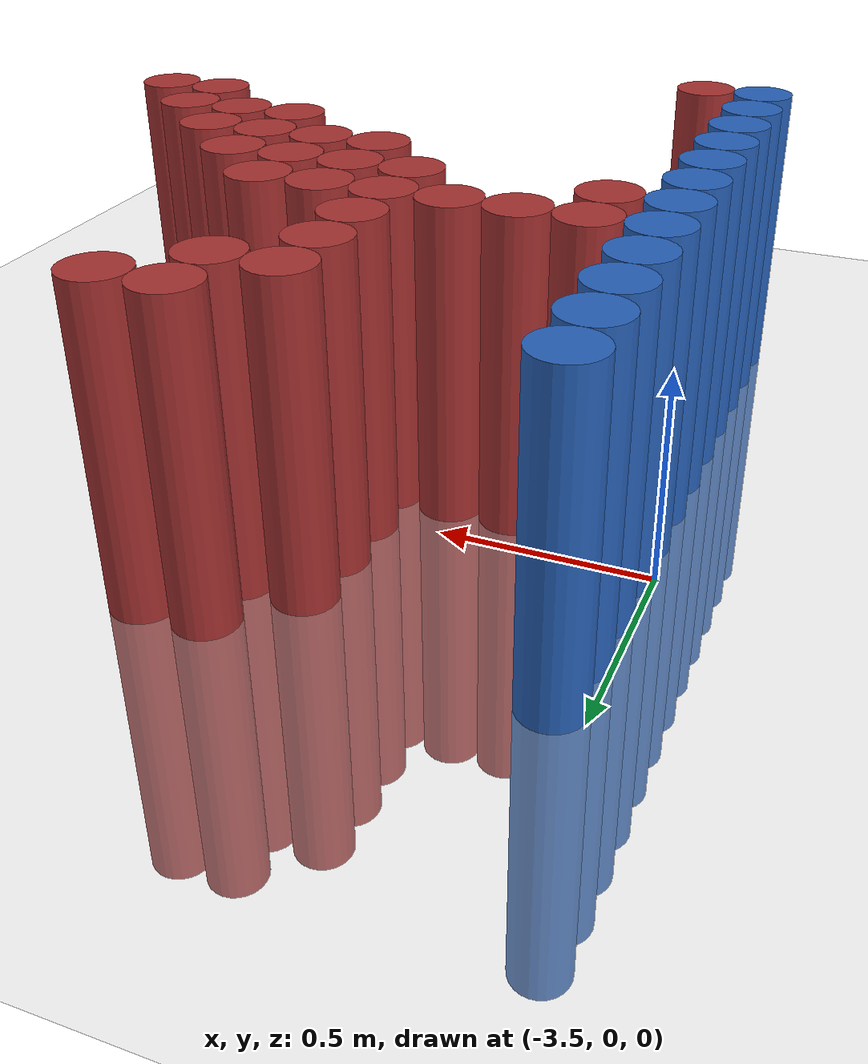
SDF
<sdf version="1.6">
 <world name="default">
  <model name="ground_plane">
   <static>1</static>
   <link name="link">
    <collision name="collision">
     <geometry><plane><normal>0 0 1</normal><size>100 100</size></plane></geometry>
     <surface><friction><ode><mu>100</mu><mu2>50</mu2></ode></friction></surface>
    </collision>
    <visual name="visual">
     <cast_shadows>0</cast_shadows>
     <geometry><plane><normal>0 0 1</normal><size>100 100</size></plane></geometry>
     <material>
      <script><uri>file://media/materials/scripts/gazebo.material</uri><name>Gazebo/Grey</name></script>
     </material>
    </visual>
   </link>
  </model>
  <model name="unit_cylinder_99">
   <static>1</static>
   <pose>-3.425000 -1.175000 0.000000 0.000000 0.000000 0.000000</pose>
   <link name="link">
    <inertial>
     <mass>1</mass>
     <inertia><ixx>0.145833</ixx><ixy>0</ixy><ixz>0</ixz><iyy>0.145833</iyy><iyz>0</iyz><izz>0.125</izz></inertia>
    </inertial>
    <collision name="collision">
     <geometry><cylinder><radius>0.075000</radius><length>1.5</length></cylinder></geometry>
    </collision>
    <visual name="visual">
     <geometry><cylinder><radius>0.075000</radius><length>1.5</length></cylinder></geometry>
     <material>
      <ambient>0.152000 0.379000 0.720000 1</ambient>
      <diffuse>0.152000 0.379000 0.720000 1</diffuse>
     </material>
     <material>
      <script><name>Gazebo/Grey</name><uri>file://media/materials/scripts/gazebo.material</uri></script>
     </material>
    </visual>
   </link>
  </model>
  <model name="unit_cylinder_101">
   <static>1</static>
   <pose>-3.425000 -1.025000 0.000000 0.000000 0.000000 0.000000</pose>
   <link name="link">
    <inertial>
     <mass>1</mass>
     <inertia><ixx>0.145833</ixx><ixy>0</ixy><ixz>0</ixz><iyy>0.145833</iyy><iyz>0</iyz><izz>0.125</izz></inertia>
    </inertial>
    <collision name="collision">
     <geometry><cylinder><radius>0.075000</radius><length>1.5</length></cylinder></geometry>
    </collision>
    <visual name="visual">
     <geometry><cylinder><radius>0.075000</radius><length>1.5</length></cylinder></geometry>
     <material>
      <ambient>0.152000 0.379000 0.720000 1</ambient>
      <diffuse>0.152000 0.379000 0.720000 1</diffuse>
     </material>
     <material>
      <script><name>Gazebo/Grey</name><uri>file://media/materials/scripts/gazebo.material</uri></script>
     </material>
    </visual>
   </link>
  </model>
  <model name="unit_cylinder_103">
   <static>1</static>
   <pose>-3.425000 -0.875000 0.000000 0.000000 0.000000 0.000000</pose>
   <link name="link">
    <inertial>
     <mass>1</mass>
     <inertia><ixx>0.145833</ixx><ixy>0</ixy><ixz>0</ixz><iyy>0.145833</iyy><iyz>0</iyz><izz>0.125</izz></inertia>
    </inertial>
    <collision name="collision">
     <geometry><cylinder><radius>0.075000</radius><length>1.5</length></cylinder></geometry>
    </collision>
    <visual name="visual">
     <geometry><cylinder><radius>0.075000</radius><length>1.5</length></cylinder></geometry>
     <material>
      <ambient>0.152000 0.379000 0.720000 1</ambient>
      <diffuse>0.152000 0.379000 0.720000 1</diffuse>
     </material>
     <material>
      <script><name>Gazebo/Grey</name><uri>file://media/materials/scripts/gazebo.material</uri></script>
     </material>
    </visual>
   </link>
  </model>
  <model name="unit_cylinder_105">
   <static>1</static>
   <pose>-3.425000 -0.725000 0.000000 0.000000 0.000000 0.000000</pose>
   <link name="link">
    <inertial>
     <mass>1</mass>
     <inertia><ixx>0.145833</ixx><ixy>0</ixy><ixz>0</ixz><iyy>0.145833</iyy><iyz>0</iyz><izz>0.125</izz></inertia>
    </inertial>
    <collision name="collision">
     <geometry><cylinder><radius>0.075000</radius><length>1.5</length></cylinder></geometry>
    </collision>
    <visual name="visual">
     <geometry><cylinder><radius>0.075000</radius><length>1.5</length></cylinder></geometry>
     <material>
      <ambient>0.152000 0.379000 0.720000 1</ambient>
      <diffuse>0.152000 0.379000 0.720000 1</diffuse>
     </material>
     <material>
      <script><name>Gazebo/Grey</name><uri>file://media/materials/scripts/gazebo.material</uri></script>
     </material>
    </visual>
   </link>
  </model>
  <model name="unit_cylinder_107">
   <static>1</static>
   <pose>-3.425000 -0.575000 0.000000 0.000000 0.000000 0.000000</pose>
   <link name="link">
    <inertial>
     <mass>1</mass>
     <inertia><ixx>0.145833</ixx><ixy>0</ixy><ixz>0</ixz><iyy>0.145833</iyy><iyz>0</iyz><izz>0.125</izz></inertia>
    </inertial>
    <collision name="collision">
     <geometry><cylinder><radius>0.075000</radius><length>1.5</length></cylinder></geometry>
    </collision>
    <visual name="visual">
     <geometry><cylinder><radius>0.075000</radius><length>1.5</length></cylinder></geometry>
     <material>
      <ambient>0.152000 0.379000 0.720000 1</ambient>
      <diffuse>0.152000 0.379000 0.720000 1</diffuse>
     </material>
     <material>
      <script><name>Gazebo/Grey</name><uri>file://media/materials/scripts/gazebo.material</uri></script>
     </material>
    </visual>
   </link>
  </model>
  <model name="unit_cylinder_109">
   <static>1</static>
   <pose>-3.425000 -0.425000 0.000000 0.000000 0.000000 0.000000</pose>
   <link name="link">
    <inertial>
     <mass>1</mass>
     <inertia><ixx>0.145833</ixx><ixy>0</ixy><ixz>0</ixz><iyy>0.145833</iyy><iyz>0</iyz><izz>0.125</izz></inertia>
    </inertial>
    <collision name="collision">
     <geometry><cylinder><radius>0.075000</radius><length>1.5</length></cylinder></geometry>
    </collision>
    <visual name="visual">
     <geometry><cylinder><radius>0.075000</radius><length>1.5</length></cylinder></geometry>
     <material>
      <ambient>0.152000 0.379000 0.720000 1</ambient>
      <diffuse>0.152000 0.379000 0.720000 1</diffuse>
     </material>
     <material>
      <script><name>Gazebo/Grey</name><uri>file://media/materials/scripts/gazebo.material</uri></script>
     </material>
    </visual>
   </link>
  </model>
  <model name="unit_cylinder_111">
   <static>1</static>
   <pose>-3.425000 -0.275000 0.000000 0.000000 0.000000 0.000000</pose>
   <link name="link">
    <inertial>
     <mass>1</mass>
     <inertia><ixx>0.145833</ixx><ixy>0</ixy><ixz>0</ixz><iyy>0.145833</iyy><iyz>0</iyz><izz>0.125</izz></inertia>
    </inertial>
    <collision name="collision">
     <geometry><cylinder><radius>0.075000</radius><length>1.5</length></cylinder></geometry>
    </collision>
    <visual name="visual">
     <geometry><cylinder><radius>0.075000</radius><length>1.5</length></cylinder></geometry>
     <material>
      <ambient>0.152000 0.379000 0.720000 1</ambient>
      <diffuse>0.152000 0.379000 0.720000 1</diffuse>
     </material>
     <material>
      <script><name>Gazebo/Grey</name><uri>file://media/materials/scripts/gazebo.material</uri></script>
     </material>
    </visual>
   </link>
  </model>
  <model name="unit_cylinder_113">
   <static>1</static>
   <pose>-3.425000 -0.125000 0.000000 0.000000 0.000000 0.000000</pose>
   <link name="link">
    <inertial>
     <mass>1</mass>
     <inertia><ixx>0.145833</ixx><ixy>0</ixy><ixz>0</ixz><iyy>0.145833</iyy><iyz>0</iyz><izz>0.125</izz></inertia>
    </inertial>
    <collision name="collision">
     <geometry><cylinder><radius>0.075000</radius><length>1.5</length></cylinder></geometry>
    </collision>
    <visual name="visual">
     <geometry><cylinder><radius>0.075000</radius><length>1.5</length></cylinder></geometry>
     <material>
      <ambient>0.152000 0.379000 0.720000 1</ambient>
      <diffuse>0.152000 0.379000 0.720000 1</diffuse>
     </material>
     <material>
      <script><name>Gazebo/Grey</name><uri>file://media/materials/scripts/gazebo.material</uri></script>
     </material>
    </visual>
   </link>
  </model>
  <model name="unit_cylinder_115">
   <static>1</static>
   <pose>-3.425000 0.025000 0.000000 0.000000 0.000000 0.000000</pose>
   <link name="link">
    <inertial>
     <mass>1</mass>
     <inertia><ixx>0.145833</ixx><ixy>0</ixy><ixz>0</ixz><iyy>0.145833</iyy><iyz>0</iyz><izz>0.125</izz></inertia>
    </inertial>
    <collision name="collision">
     <geometry><cylinder><radius>0.075000</radius><length>1.5</length></cylinder></geometry>
    </collision>
    <visual name="visual">
     <geometry><cylinder><radius>0.075000</radius><length>1.5</length></cylinder></geometry>
     <material>
      <ambient>0.152000 0.379000 0.720000 1</ambient>
      <diffuse>0.152000 0.379000 0.720000 1</diffuse>
     </material>
     <material>
      <script><name>Gazebo/Grey</name><uri>file://media/materials/scripts/gazebo.material</uri></script>
     </material>
    </visual>
   </link>
  </model>
  <model name="unit_cylinder_117">
   <static>1</static>
   <pose>-3.425000 0.175000 0.000000 0.000000 0.000000 0.000000</pose>
   <link name="link">
    <inertial>
     <mass>1</mass>
     <inertia><ixx>0.145833</ixx><ixy>0</ixy><ixz>0</ixz><iyy>0.145833</iyy><iyz>0</iyz><izz>0.125</izz></inertia>
    </inertial>
    <collision name="collision">
     <geometry><cylinder><radius>0.075000</radius><length>1.5</length></cylinder></geometry>
    </collision>
    <visual name="visual">
     <geometry><cylinder><radius>0.075000</radius><length>1.5</length></cylinder></geometry>
     <material>
      <ambient>0.152000 0.379000 0.720000 1</ambient>
      <diffuse>0.152000 0.379000 0.720000 1</diffuse>
     </material>
     <material>
      <script><name>Gazebo/Grey</name><uri>file://media/materials/scripts/gazebo.material</uri></script>
     </material>
    </visual>
   </link>
  </model>
  <model name="unit_cylinder_119">
   <static>1</static>
   <pose>-3.425000 0.325000 0.000000 0.000000 0.000000 0.000000</pose>
   <link name="link">
    <inertial>
     <mass>1</mass>
     <inertia><ixx>0.145833</ixx><ixy>0</ixy><ixz>0</ixz><iyy>0.145833</iyy><iyz>0</iyz><izz>0.125</izz></inertia>
    </inertial>
    <collision name="collision">
     <geometry><cylinder><radius>0.075000</radius><length>1.5</length></cylinder></geometry>
    </collision>
    <visual name="visual">
     <geometry><cylinder><radius>0.075000</radius><length>1.5</length></cylinder></geometry>
     <material>
      <ambient>0.152000 0.379000 0.720000 1</ambient>
      <diffuse>0.152000 0.379000 0.720000 1</diffuse>
     </material>
     <material>
      <script><name>Gazebo/Grey</name><uri>file://media/materials/scripts/gazebo.material</uri></script>
     </material>
    </visual>
   </link>
  </model>
  <model name="unit_cylinder_121">
   <static>1</static>
   <pose>-3.425000 0.475000 0.000000 0.000000 0.000000 0.000000</pose>
   <link name="link">
    <inertial>
     <mass>1</mass>
     <inertia><ixx>0.145833</ixx><ixy>0</ixy><ixz>0</ixz><iyy>0.145833</iyy><iyz>0</iyz><izz>0.125</izz></inertia>
    </inertial>
    <collision name="collision">
     <geometry><cylinder><radius>0.075000</radius><length>1.5</length></cylinder></geometry>
    </collision>
    <visual name="visual">
     <geometry><cylinder><radius>0.075000</radius><length>1.5</length></cylinder></geometry>
     <material>
      <ambient>0.152000 0.379000 0.720000 1</ambient>
      <diffuse>0.152000 0.379000 0.720000 1</diffuse>
     </material>
     <material>
      <script><name>Gazebo/Grey</name><uri>file://media/materials/scripts/gazebo.material</uri></script>
     </material>
    </visual>
   </link>
  </model>
  <model name="unit_cylinder_213">
   <static>1</static>
   <pose>-3.425000 -1.175000 0.000000 0.000000 0.000000 0.000000</pose>
   <link name="link">
    <inertial>
     <mass>1</mass>
     <inertia><ixx>0.145833</ixx><ixy>0</ixy><ixz>0</ixz><iyy>0.145833</iyy><iyz>0</iyz><izz>0.125</izz></inertia>
    </inertial>
    <collision name="collision">
     <geometry><cylinder><radius>0.075000</radius><length>1.5</length></cylinder></geometry>
    </collision>
    <visual name="visual">
     <geometry><cylinder><radius>0.075000</radius><length>1.5</length></cylinder></geometry>
     <material>
      <ambient>0.152000 0.379000 0.720000 1</ambient>
      <diffuse>0.152000 0.379000 0.720000 1</diffuse>
     </material>
     <material>
      <script><name>Gazebo/Grey</name><uri>file://media/materials/scripts/gazebo.material</uri></script>
     </material>
    </visual>
   </link>
  </model>
  <model name="unit_cylinder_214">
   <static>1</static>
   <pose>-3.425000 -1.025000 0.000000 0.000000 0.000000 0.000000</pose>
   <link name="link">
    <inertial>
     <mass>1</mass>
     <inertia><ixx>0.145833</ixx><ixy>0</ixy><ixz>0</ixz><iyy>0.145833</iyy><iyz>0</iyz><izz>0.125</izz></inertia>
    </inertial>
    <collision name="collision">
     <geometry><cylinder><radius>0.075000</radius><length>1.5</length></cylinder></geometry>
    </collision>
    <visual name="visual">
     <geometry><cylinder><radius>0.075000</radius><length>1.5</length></cylinder></geometry>
     <material>
      <ambient>0.152000 0.379000 0.720000 1</ambient>
      <diffuse>0.152000 0.379000 0.720000 1</diffuse>
     </material>
     <material>
      <script><name>Gazebo/Grey</name><uri>file://media/materials/scripts/gazebo.material</uri></script>
     </material>
    </visual>
   </link>
  </model>
  <model name="unit_cylinder_215">
   <static>1</static>
   <pose>-3.425000 -0.875000 0.000000 0.000000 0.000000 0.000000</pose>
   <link name="link">
    <inertial>
     <mass>1</mass>
     <inertia><ixx>0.145833</ixx><ixy>0</ixy><ixz>0</ixz><iyy>0.145833</iyy><iyz>0</iyz><izz>0.125</izz></inertia>
    </inertial>
    <collision name="collision">
     <geometry><cylinder><radius>0.075000</radius><length>1.5</length></cylinder></geometry>
    </collision>
    <visual name="visual">
     <geometry><cylinder><radius>0.075000</radius><length>1.5</length></cylinder></geometry>
     <material>
      <ambient>0.152000 0.379000 0.720000 1</ambient>
      <diffuse>0.152000 0.379000 0.720000 1</diffuse>
     </material>
     <material>
      <script><name>Gazebo/Grey</name><uri>file://media/materials/scripts/gazebo.material</uri></script>
     </material>
    </visual>
   </link>
  </model>
  <model name="unit_cylinder_216">
   <static>1</static>
   <pose>-3.425000 -0.725000 0.000000 0.000000 0.000000 0.000000</pose>
   <link name="link">
    <inertial>
     <mass>1</mass>
     <inertia><ixx>0.145833</ixx><ixy>0</ixy><ixz>0</ixz><iyy>0.145833</iyy><iyz>0</iyz><izz>0.125</izz></inertia>
    </inertial>
    <collision name="collision">
     <geometry><cylinder><radius>0.075000</radius><length>1.5</length></cylinder></geometry>
    </collision>
    <visual name="visual">
     <geometry><cylinder><radius>0.075000</radius><length>1.5</length></cylinder></geometry>
     <material>
      <ambient>0.152000 0.379000 0.720000 1</ambient>
      <diffuse>0.152000 0.379000 0.720000 1</diffuse>
     </material>
     <material>
      <script><name>Gazebo/Grey</name><uri>file://media/materials/scripts/gazebo.material</uri></script>
     </material>
    </visual>
   </link>
  </model>
  <model name="unit_cylinder_217">
   <static>1</static>
   <pose>-3.425000 -0.575000 0.000000 0.000000 0.000000 0.000000</pose>
   <link name="link">
    <inertial>
     <mass>1</mass>
     <inertia><ixx>0.145833</ixx><ixy>0</ixy><ixz>0</ixz><iyy>0.145833</iyy><iyz>0</iyz><izz>0.125</izz></inertia>
    </inertial>
    <collision name="collision">
     <geometry><cylinder><radius>0.075000</radius><length>1.5</length></cylinder></geometry>
    </collision>
    <visual name="visual">
     <geometry><cylinder><radius>0.075000</radius><length>1.5</length></cylinder></geometry>
     <material>
      <ambient>0.152000 0.379000 0.720000 1</ambient>
      <diffuse>0.152000 0.379000 0.720000 1</diffuse>
     </material>
     <material>
      <script><name>Gazebo/Grey</name><uri>file://media/materials/scripts/gazebo.material</uri></script>
     </material>
    </visual>
   </link>
  </model>
  <model name="unit_cylinder_218">
   <static>1</static>
   <pose>-3.425000 -0.425000 0.000000 0.000000 0.000000 0.000000</pose>
   <link name="link">
    <inertial>
     <mass>1</mass>
     <inertia><ixx>0.145833</ixx><ixy>0</ixy><ixz>0</ixz><iyy>0.145833</iyy><iyz>0</iyz><izz>0.125</izz></inertia>
    </inertial>
    <collision name="collision">
     <geometry><cylinder><radius>0.075000</radius><length>1.5</length></cylinder></geometry>
    </collision>
    <visual name="visual">
     <geometry><cylinder><radius>0.075000</radius><length>1.5</length></cylinder></geometry>
     <material>
      <ambient>0.152000 0.379000 0.720000 1</ambient>
      <diffuse>0.152000 0.379000 0.720000 1</diffuse>
     </material>
     <material>
      <script><name>Gazebo/Grey</name><uri>file://media/materials/scripts/gazebo.material</uri></script>
     </material>
    </visual>
   </link>
  </model>
  <model name="unit_cylinder_219">
   <static>1</static>
   <pose>-3.425000 -0.275000 0.000000 0.000000 0.000000 0.000000</pose>
   <link name="link">
    <inertial>
     <mass>1</mass>
     <inertia><ixx>0.145833</ixx><ixy>0</ixy><ixz>0</ixz><iyy>0.145833</iyy><iyz>0</iyz><izz>0.125</izz></inertia>
    </inertial>
    <collision name="collision">
     <geometry><cylinder><radius>0.075000</radius><length>1.5</length></cylinder></geometry>
    </collision>
    <visual name="visual">
     <geometry><cylinder><radius>0.075000</radius><length>1.5</length></cylinder></geometry>
     <material>
      <ambient>0.152000 0.379000 0.720000 1</ambient>
      <diffuse>0.152000 0.379000 0.720000 1</diffuse>
     </material>
     <material>
      <script><name>Gazebo/Grey</name><uri>file://media/materials/scripts/gazebo.material</uri></script>
     </material>
    </visual>
   </link>
  </model>
  <model name="unit_cylinder_220">
   <static>1</static>
   <pose>-3.425000 -0.125000 0.000000 0.000000 0.000000 0.000000</pose>
   <link name="link">
    <inertial>
     <mass>1</mass>
     <inertia><ixx>0.145833</ixx><ixy>0</ixy><ixz>0</ixz><iyy>0.145833</iyy><iyz>0</iyz><izz>0.125</izz></inertia>
    </inertial>
    <collision name="collision">
     <geometry><cylinder><radius>0.075000</radius><length>1.5</length></cylinder></geometry>
    </collision>
    <visual name="visual">
     <geometry><cylinder><radius>0.075000</radius><length>1.5</length></cylinder></geometry>
     <material>
      <ambient>0.152000 0.379000 0.720000 1</ambient>
      <diffuse>0.152000 0.379000 0.720000 1</diffuse>
     </material>
     <material>
      <script><name>Gazebo/Grey</name><uri>file://media/materials/scripts/gazebo.material</uri></script>
     </material>
    </visual>
   </link>
  </model>
  <model name="unit_cylinder_221">
   <static>1</static>
   <pose>-3.425000 0.025000 0.000000 0.000000 0.000000 0.000000</pose>
   <link name="link">
    <inertial>
     <mass>1</mass>
     <inertia><ixx>0.145833</ixx><ixy>0</ixy><ixz>0</ixz><iyy>0.145833</iyy><iyz>0</iyz><izz>0.125</izz></inertia>
    </inertial>
    <collision name="collision">
     <geometry><cylinder><radius>0.075000</radius><length>1.5</length></cylinder></geometry>
    </collision>
    <visual name="visual">
     <geometry><cylinder><radius>0.075000</radius><length>1.5</length></cylinder></geometry>
     <material>
      <ambient>0.152000 0.379000 0.720000 1</ambient>
      <diffuse>0.152000 0.379000 0.720000 1</diffuse>
     </material>
     <material>
      <script><name>Gazebo/Grey</name><uri>file://media/materials/scripts/gazebo.material</uri></script>
     </material>
    </visual>
   </link>
  </model>
  <model name="unit_cylinder_222">
   <static>1</static>
   <pose>-3.425000 0.175000 0.000000 0.000000 0.000000 0.000000</pose>
   <link name="link">
    <inertial>
     <mass>1</mass>
     <inertia><ixx>0.145833</ixx><ixy>0</ixy><ixz>0</ixz><iyy>0.145833</iyy><iyz>0</iyz><izz>0.125</izz></inertia>
    </inertial>
    <collision name="collision">
     <geometry><cylinder><radius>0.075000</radius><length>1.5</length></cylinder></geometry>
    </collision>
    <visual name="visual">
     <geometry><cylinder><radius>0.075000</radius><length>1.5</length></cylinder></geometry>
     <material>
      <ambient>0.152000 0.379000 0.720000 1</ambient>
      <diffuse>0.152000 0.379000 0.720000 1</diffuse>
     </material>
     <material>
      <script><name>Gazebo/Grey</name><uri>file://media/materials/scripts/gazebo.material</uri></script>
     </material>
    </visual>
   </link>
  </model>
  <model name="unit_cylinder_223">
   <static>1</static>
   <pose>-3.425000 0.325000 0.000000 0.000000 0.000000 0.000000</pose>
   <link name="link">
    <inertial>
     <mass>1</mass>
     <inertia><ixx>0.145833</ixx><ixy>0</ixy><ixz>0</ixz><iyy>0.145833</iyy><iyz>0</iyz><izz>0.125</izz></inertia>
    </inertial>
    <collision name="collision">
     <geometry><cylinder><radius>0.075000</radius><length>1.5</length></cylinder></geometry>
    </collision>
    <visual name="visual">
     <geometry><cylinder><radius>0.075000</radius><length>1.5</length></cylinder></geometry>
     <material>
      <ambient>0.152000 0.379000 0.720000 1</ambient>
      <diffuse>0.152000 0.379000 0.720000 1</diffuse>
     </material>
     <material>
      <script><name>Gazebo/Grey</name><uri>file://media/materials/scripts/gazebo.material</uri></script>
     </material>
    </visual>
   </link>
  </model>
  <model name="unit_cylinder_224">
   <static>1</static>
   <pose>-3.425000 0.475000 0.000000 0.000000 0.000000 0.000000</pose>
   <link name="link">
    <inertial>
     <mass>1</mass>
     <inertia><ixx>0.145833</ixx><ixy>0</ixy><ixz>0</ixz><iyy>0.145833</iyy><iyz>0</iyz><izz>0.125</izz></inertia>
    </inertial>
    <collision name="collision">
     <geometry><cylinder><radius>0.075000</radius><length>1.5</length></cylinder></geometry>
    </collision>
    <visual name="visual">
     <geometry><cylinder><radius>0.075000</radius><length>1.5</length></cylinder></geometry>
     <material>
      <ambient>0.152000 0.379000 0.720000 1</ambient>
      <diffuse>0.152000 0.379000 0.720000 1</diffuse>
     </material>
     <material>
      <script><name>Gazebo/Grey</name><uri>file://media/materials/scripts/gazebo.material</uri></script>
     </material>
    </visual>
   </link>
  </model>
  <model name="unit_cylinder_263">
   <static>1</static>
   <pose>-3.275000 -1.175000 0.000000 0.000000 0.000000 0.000000</pose>
   <link name="link">
    <inertial>
     <mass>1</mass>
     <inertia><ixx>0.145833</ixx><ixy>0</ixy><ixz>0</ixz><iyy>0.145833</iyy><iyz>0</iyz><izz>0.125</izz></inertia>
    </inertial>
    <collision name="collision">
     <geometry><cylinder><radius>0.075000</radius><length>1.5</length></cylinder></geometry>
    </collision>
    <visual name="visual">
     <geometry><cylinder><radius>0.075000</radius><length>1.5</length></cylinder></geometry>
     <material>
      <ambient>0.648000 0.192000 0.192000 1</ambient>
      <diffuse>0.648000 0.192000 0.192000 1</diffuse>
     </material>
     <material>
      <script><name>Gazebo/Grey</name><uri>file://media/materials/scripts/gazebo.material</uri></script>
     </material>
    </visual>
   </link>
  </model>
  <model name="unit_cylinder_264">
   <static>1</static>
   <pose>-3.275000 -0.275000 0.000000 0.000000 0.000000 0.000000</pose>
   <link name="link">
    <inertial>
     <mass>1</mass>
     <inertia><ixx>0.145833</ixx><ixy>0</ixy><ixz>0</ixz><iyy>0.145833</iyy><iyz>0</iyz><izz>0.125</izz></inertia>
    </inertial>
    <collision name="collision">
     <geometry><cylinder><radius>0.075000</radius><length>1.5</length></cylinder></geometry>
    </collision>
    <visual name="visual">
     <geometry><cylinder><radius>0.075000</radius><length>1.5</length></cylinder></geometry>
     <material>
      <ambient>0.648000 0.192000 0.192000 1</ambient>
      <diffuse>0.648000 0.192000 0.192000 1</diffuse>
     </material>
     <material>
      <script><name>Gazebo/Grey</name><uri>file://media/materials/scripts/gazebo.material</uri></script>
     </material>
    </visual>
   </link>
  </model>
  <model name="unit_cylinder_265">
   <static>1</static>
   <pose>-3.275000 -0.125000 0.000000 0.000000 0.000000 0.000000</pose>
   <link name="link">
    <inertial>
     <mass>1</mass>
     <inertia><ixx>0.145833</ixx><ixy>0</ixy><ixz>0</ixz><iyy>0.145833</iyy><iyz>0</iyz><izz>0.125</izz></inertia>
    </inertial>
    <collision name="collision">
     <geometry><cylinder><radius>0.075000</radius><length>1.5</length></cylinder></geometry>
    </collision>
    <visual name="visual">
     <geometry><cylinder><radius>0.075000</radius><length>1.5</length></cylinder></geometry>
     <material>
      <ambient>0.648000 0.192000 0.192000 1</ambient>
      <diffuse>0.648000 0.192000 0.192000 1</diffuse>
     </material>
     <material>
      <script><name>Gazebo/Grey</name><uri>file://media/materials/scripts/gazebo.material</uri></script>
     </material>
    </visual>
   </link>
  </model>
  <model name="unit_cylinder_284">
   <static>1</static>
   <pose>-3.125000 -0.125000 0.000000 0.000000 0.000000 0.000000</pose>
   <link name="link">
    <inertial>
     <mass>1</mass>
     <inertia><ixx>0.145833</ixx><ixy>0</ixy><ixz>0</ixz><iyy>0.145833</iyy><iyz>0</iyz><izz>0.125</izz></inertia>
    </inertial>
    <collision name="collision">
     <geometry><cylinder><radius>0.075000</radius><length>1.5</length></cylinder></geometry>
    </collision>
    <visual name="visual">
     <geometry><cylinder><radius>0.075000</radius><length>1.5</length></cylinder></geometry>
     <material>
      <ambient>0.648000 0.192000 0.192000 1</ambient>
      <diffuse>0.648000 0.192000 0.192000 1</diffuse>
     </material>
     <material>
      <script><name>Gazebo/Grey</name><uri>file://media/materials/scripts/gazebo.material</uri></script>
     </material>
    </visual>
   </link>
  </model>
  <model name="unit_cylinder_290">
   <static>1</static>
   <pose>-2.975000 -0.125000 0.000000 0.000000 0.000000 0.000000</pose>
   <link name="link">
    <inertial>
     <mass>1</mass>
     <inertia><ixx>0.145833</ixx><ixy>0</ixy><ixz>0</ixz><iyy>0.145833</iyy><iyz>0</iyz><izz>0.125</izz></inertia>
    </inertial>
    <collision name="collision">
     <geometry><cylinder><radius>0.075000</radius><length>1.5</length></cylinder></geometry>
    </collision>
    <visual name="visual">
     <geometry><cylinder><radius>0.075000</radius><length>1.5</length></cylinder></geometry>
     <material>
      <ambient>0.648000 0.192000 0.192000 1</ambient>
      <diffuse>0.648000 0.192000 0.192000 1</diffuse>
     </material>
     <material>
      <script><name>Gazebo/Grey</name><uri>file://media/materials/scripts/gazebo.material</uri></script>
     </material>
    </visual>
   </link>
  </model>
  <model name="unit_cylinder_294">
   <static>1</static>
   <pose>-2.825000 -0.275000 0.000000 0.000000 0.000000 0.000000</pose>
   <link name="link">
    <inertial>
     <mass>1</mass>
     <inertia><ixx>0.145833</ixx><ixy>0</ixy><ixz>0</ixz><iyy>0.145833</iyy><iyz>0</iyz><izz>0.125</izz></inertia>
    </inertial>
    <collision name="collision">
     <geometry><cylinder><radius>0.075000</radius><length>1.5</length></cylinder></geometry>
    </collision>
    <visual name="visual">
     <geometry><cylinder><radius>0.075000</radius><length>1.5</length></cylinder></geometry>
     <material>
      <ambient>0.648000 0.192000 0.192000 1</ambient>
      <diffuse>0.648000 0.192000 0.192000 1</diffuse>
     </material>
     <material>
      <script><name>Gazebo/Grey</name><uri>file://media/materials/scripts/gazebo.material</uri></script>
     </material>
    </visual>
   </link>
  </model>
  <model name="unit_cylinder_295">
   <static>1</static>
   <pose>-2.825000 -0.125000 0.000000 0.000000 0.000000 0.000000</pose>
   <link name="link">
    <inertial>
     <mass>1</mass>
     <inertia><ixx>0.145833</ixx><ixy>0</ixy><ixz>0</ixz><iyy>0.145833</iyy><iyz>0</iyz><izz>0.125</izz></inertia>
    </inertial>
    <collision name="collision">
     <geometry><cylinder><radius>0.075000</radius><length>1.5</length></cylinder></geometry>
    </collision>
    <visual name="visual">
     <geometry><cylinder><radius>0.075000</radius><length>1.5</length></cylinder></geometry>
     <material>
      <ambient>0.648000 0.192000 0.192000 1</ambient>
      <diffuse>0.648000 0.192000 0.192000 1</diffuse>
     </material>
     <material>
      <script><name>Gazebo/Grey</name><uri>file://media/materials/scripts/gazebo.material</uri></script>
     </material>
    </visual>
   </link>
  </model>
  <model name="unit_cylinder_296">
   <static>1</static>
   <pose>-2.825000 0.025000 0.000000 0.000000 0.000000 0.000000</pose>
   <link name="link">
    <inertial>
     <mass>1</mass>
     <inertia><ixx>0.145833</ixx><ixy>0</ixy><ixz>0</ixz><iyy>0.145833</iyy><iyz>0</iyz><izz>0.125</izz></inertia>
    </inertial>
    <collision name="collision">
     <geometry><cylinder><radius>0.075000</radius><length>1.5</length></cylinder></geometry>
    </collision>
    <visual name="visual">
     <geometry><cylinder><radius>0.075000</radius><length>1.5</length></cylinder></geometry>
     <material>
      <ambient>0.648000 0.192000 0.192000 1</ambient>
      <diffuse>0.648000 0.192000 0.192000 1</diffuse>
     </material>
     <material>
      <script><name>Gazebo/Grey</name><uri>file://media/materials/scripts/gazebo.material</uri></script>
     </material>
    </visual>
   </link>
  </model>
  <model name="unit_cylinder_297">
   <static>1</static>
   <pose>-2.825000 0.175000 0.000000 0.000000 0.000000 0.000000</pose>
   <link name="link">
    <inertial>
     <mass>1</mass>
     <inertia><ixx>0.145833</ixx><ixy>0</ixy><ixz>0</ixz><iyy>0.145833</iyy><iyz>0</iyz><izz>0.125</izz></inertia>
    </inertial>
    <collision name="collision">
     <geometry><cylinder><radius>0.075000</radius><length>1.5</length></cylinder></geometry>
    </collision>
    <visual name="visual">
     <geometry><cylinder><radius>0.075000</radius><length>1.5</length></cylinder></geometry>
     <material>
      <ambient>0.648000 0.192000 0.192000 1</ambient>
      <diffuse>0.648000 0.192000 0.192000 1</diffuse>
     </material>
     <material>
      <script><name>Gazebo/Grey</name><uri>file://media/materials/scripts/gazebo.material</uri></script>
     </material>
    </visual>
   </link>
  </model>
  <model name="unit_cylinder_298">
   <static>1</static>
   <pose>-2.825000 0.325000 0.000000 0.000000 0.000000 0.000000</pose>
   <link name="link">
    <inertial>
     <mass>1</mass>
     <inertia><ixx>0.145833</ixx><ixy>0</ixy><ixz>0</ixz><iyy>0.145833</iyy><iyz>0</iyz><izz>0.125</izz></inertia>
    </inertial>
    <collision name="collision">
     <geometry><cylinder><radius>0.075000</radius><length>1.5</length></cylinder></geometry>
    </collision>
    <visual name="visual">
     <geometry><cylinder><radius>0.075000</radius><length>1.5</length></cylinder></geometry>
     <material>
      <ambient>0.648000 0.192000 0.192000 1</ambient>
      <diffuse>0.648000 0.192000 0.192000 1</diffuse>
     </material>
     <material>
      <script><name>Gazebo/Grey</name><uri>file://media/materials/scripts/gazebo.material</uri></script>
     </material>
    </visual>
   </link>
  </model>
  <model name="unit_cylinder_305">
   <static>1</static>
   <pose>-2.675000 -0.425000 0.000000 0.000000 0.000000 0.000000</pose>
   <link name="link">
    <inertial>
     <mass>1</mass>
     <inertia><ixx>0.145833</ixx><ixy>0</ixy><ixz>0</ixz><iyy>0.145833</iyy><iyz>0</iyz><izz>0.125</izz></inertia>
    </inertial>
    <collision name="collision">
     <geometry><cylinder><radius>0.075000</radius><length>1.5</length></cylinder></geometry>
    </collision>
    <visual name="visual">
     <geometry><cylinder><radius>0.075000</radius><length>1.5</length></cylinder></geometry>
     <material>
      <ambient>0.648000 0.192000 0.192000 1</ambient>
      <diffuse>0.648000 0.192000 0.192000 1</diffuse>
     </material>
     <material>
      <script><name>Gazebo/Grey</name><uri>file://media/materials/scripts/gazebo.material</uri></script>
     </material>
    </visual>
   </link>
  </model>
  <model name="unit_cylinder_306">
   <static>1</static>
   <pose>-2.675000 -0.275000 0.000000 0.000000 0.000000 0.000000</pose>
   <link name="link">
    <inertial>
     <mass>1</mass>
     <inertia><ixx>0.145833</ixx><ixy>0</ixy><ixz>0</ixz><iyy>0.145833</iyy><iyz>0</iyz><izz>0.125</izz></inertia>
    </inertial>
    <collision name="collision">
     <geometry><cylinder><radius>0.075000</radius><length>1.5</length></cylinder></geometry>
    </collision>
    <visual name="visual">
     <geometry><cylinder><radius>0.075000</radius><length>1.5</length></cylinder></geometry>
     <material>
      <ambient>0.648000 0.192000 0.192000 1</ambient>
      <diffuse>0.648000 0.192000 0.192000 1</diffuse>
     </material>
     <material>
      <script><name>Gazebo/Grey</name><uri>file://media/materials/scripts/gazebo.material</uri></script>
     </material>
    </visual>
   </link>
  </model>
  <model name="unit_cylinder_307">
   <static>1</static>
   <pose>-2.675000 -0.125000 0.000000 0.000000 0.000000 0.000000</pose>
   <link name="link">
    <inertial>
     <mass>1</mass>
     <inertia><ixx>0.145833</ixx><ixy>0</ixy><ixz>0</ixz><iyy>0.145833</iyy><iyz>0</iyz><izz>0.125</izz></inertia>
    </inertial>
    <collision name="collision">
     <geometry><cylinder><radius>0.075000</radius><length>1.5</length></cylinder></geometry>
    </collision>
    <visual name="visual">
     <geometry><cylinder><radius>0.075000</radius><length>1.5</length></cylinder></geometry>
     <material>
      <ambient>0.648000 0.192000 0.192000 1</ambient>
      <diffuse>0.648000 0.192000 0.192000 1</diffuse>
     </material>
     <material>
      <script><name>Gazebo/Grey</name><uri>file://media/materials/scripts/gazebo.material</uri></script>
     </material>
    </visual>
   </link>
  </model>
  <model name="unit_cylinder_308">
   <static>1</static>
   <pose>-2.675000 0.325000 0.000000 0.000000 0.000000 0.000000</pose>
   <link name="link">
    <inertial>
     <mass>1</mass>
     <inertia><ixx>0.145833</ixx><ixy>0</ixy><ixz>0</ixz><iyy>0.145833</iyy><iyz>0</iyz><izz>0.125</izz></inertia>
    </inertial>
    <collision name="collision">
     <geometry><cylinder><radius>0.075000</radius><length>1.5</length></cylinder></geometry>
    </collision>
    <visual name="visual">
     <geometry><cylinder><radius>0.075000</radius><length>1.5</length></cylinder></geometry>
     <material>
      <ambient>0.648000 0.192000 0.192000 1</ambient>
      <diffuse>0.648000 0.192000 0.192000 1</diffuse>
     </material>
     <material>
      <script><name>Gazebo/Grey</name><uri>file://media/materials/scripts/gazebo.material</uri></script>
     </material>
    </visual>
   </link>
  </model>
  <model name="unit_cylinder_309">
   <static>1</static>
   <pose>-2.675000 0.475000 0.000000 0.000000 0.000000 0.000000</pose>
   <link name="link">
    <inertial>
     <mass>1</mass>
     <inertia><ixx>0.145833</ixx><ixy>0</ixy><ixz>0</ixz><iyy>0.145833</iyy><iyz>0</iyz><izz>0.125</izz></inertia>
    </inertial>
    <collision name="collision">
     <geometry><cylinder><radius>0.075000</radius><length>1.5</length></cylinder></geometry>
    </collision>
    <visual name="visual">
     <geometry><cylinder><radius>0.075000</radius><length>1.5</length></cylinder></geometry>
     <material>
      <ambient>0.648000 0.192000 0.192000 1</ambient>
      <diffuse>0.648000 0.192000 0.192000 1</diffuse>
     </material>
     <material>
      <script><name>Gazebo/Grey</name><uri>file://media/materials/scripts/gazebo.material</uri></script>
     </material>
    </visual>
   </link>
  </model>
  <model name="unit_cylinder_315">
   <static>1</static>
   <pose>-2.525000 -0.425000 0.000000 0.000000 0.000000 0.000000</pose>
   <link name="link">
    <inertial>
     <mass>1</mass>
     <inertia><ixx>0.145833</ixx><ixy>0</ixy><ixz>0</ixz><iyy>0.145833</iyy><iyz>0</iyz><izz>0.125</izz></inertia>
    </inertial>
    <collision name="collision">
     <geometry><cylinder><radius>0.075000</radius><length>1.5</length></cylinder></geometry>
    </collision>
    <visual name="visual">
     <geometry><cylinder><radius>0.075000</radius><length>1.5</length></cylinder></geometry>
     <material>
      <ambient>0.648000 0.192000 0.192000 1</ambient>
      <diffuse>0.648000 0.192000 0.192000 1</diffuse>
     </material>
     <material>
      <script><name>Gazebo/Grey</name><uri>file://media/materials/scripts/gazebo.material</uri></script>
     </material>
    </visual>
   </link>
  </model>
  <model name="unit_cylinder_316">
   <static>1</static>
   <pose>-2.525000 -0.275000 0.000000 0.000000 0.000000 0.000000</pose>
   <link name="link">
    <inertial>
     <mass>1</mass>
     <inertia><ixx>0.145833</ixx><ixy>0</ixy><ixz>0</ixz><iyy>0.145833</iyy><iyz>0</iyz><izz>0.125</izz></inertia>
    </inertial>
    <collision name="collision">
     <geometry><cylinder><radius>0.075000</radius><length>1.5</length></cylinder></geometry>
    </collision>
    <visual name="visual">
     <geometry><cylinder><radius>0.075000</radius><length>1.5</length></cylinder></geometry>
     <material>
      <ambient>0.648000 0.192000 0.192000 1</ambient>
      <diffuse>0.648000 0.192000 0.192000 1</diffuse>
     </material>
     <material>
      <script><name>Gazebo/Grey</name><uri>file://media/materials/scripts/gazebo.material</uri></script>
     </material>
    </visual>
   </link>
  </model>
  <model name="unit_cylinder_317">
   <static>1</static>
   <pose>-2.525000 -0.125000 0.000000 0.000000 0.000000 0.000000</pose>
   <link name="link">
    <inertial>
     <mass>1</mass>
     <inertia><ixx>0.145833</ixx><ixy>0</ixy><ixz>0</ixz><iyy>0.145833</iyy><iyz>0</iyz><izz>0.125</izz></inertia>
    </inertial>
    <collision name="collision">
     <geometry><cylinder><radius>0.075000</radius><length>1.5</length></cylinder></geometry>
    </collision>
    <visual name="visual">
     <geometry><cylinder><radius>0.075000</radius><length>1.5</length></cylinder></geometry>
     <material>
      <ambient>0.648000 0.192000 0.192000 1</ambient>
      <diffuse>0.648000 0.192000 0.192000 1</diffuse>
     </material>
     <material>
      <script><name>Gazebo/Grey</name><uri>file://media/materials/scripts/gazebo.material</uri></script>
     </material>
    </visual>
   </link>
  </model>
  <model name="unit_cylinder_318">
   <static>1</static>
   <pose>-2.525000 0.475000 0.000000 0.000000 0.000000 0.000000</pose>
   <link name="link">
    <inertial>
     <mass>1</mass>
     <inertia><ixx>0.145833</ixx><ixy>0</ixy><ixz>0</ixz><iyy>0.145833</iyy><iyz>0</iyz><izz>0.125</izz></inertia>
    </inertial>
    <collision name="collision">
     <geometry><cylinder><radius>0.075000</radius><length>1.5</length></cylinder></geometry>
    </collision>
    <visual name="visual">
     <geometry><cylinder><radius>0.075000</radius><length>1.5</length></cylinder></geometry>
     <material>
      <ambient>0.648000 0.192000 0.192000 1</ambient>
      <diffuse>0.648000 0.192000 0.192000 1</diffuse>
     </material>
     <material>
      <script><name>Gazebo/Grey</name><uri>file://media/materials/scripts/gazebo.material</uri></script>
     </material>
    </visual>
   </link>
  </model>
  <model name="unit_cylinder_322">
   <static>1</static>
   <pose>-2.375000 -0.575000 0.000000 0.000000 0.000000 0.000000</pose>
   <link name="link">
    <inertial>
     <mass>1</mass>
     <inertia><ixx>0.145833</ixx><ixy>0</ixy><ixz>0</ixz><iyy>0.145833</iyy><iyz>0</iyz><izz>0.125</izz></inertia>
    </inertial>
    <collision name="collision">
     <geometry><cylinder><radius>0.075000</radius><length>1.5</length></cylinder></geometry>
    </collision>
    <visual name="visual">
     <geometry><cylinder><radius>0.075000</radius><length>1.5</length></cylinder></geometry>
     <material>
      <ambient>0.648000 0.192000 0.192000 1</ambient>
      <diffuse>0.648000 0.192000 0.192000 1</diffuse>
     </material>
     <material>
      <script><name>Gazebo/Grey</name><uri>file://media/materials/scripts/gazebo.material</uri></script>
     </material>
    </visual>
   </link>
  </model>
  <model name="unit_cylinder_323">
   <static>1</static>
   <pose>-2.375000 -0.425000 0.000000 0.000000 0.000000 0.000000</pose>
   <link name="link">
    <inertial>
     <mass>1</mass>
     <inertia><ixx>0.145833</ixx><ixy>0</ixy><ixz>0</ixz><iyy>0.145833</iyy><iyz>0</iyz><izz>0.125</izz></inertia>
    </inertial>
    <collision name="collision">
     <geometry><cylinder><radius>0.075000</radius><length>1.5</length></cylinder></geometry>
    </collision>
    <visual name="visual">
     <geometry><cylinder><radius>0.075000</radius><length>1.5</length></cylinder></geometry>
     <material>
      <ambient>0.648000 0.192000 0.192000 1</ambient>
      <diffuse>0.648000 0.192000 0.192000 1</diffuse>
     </material>
     <material>
      <script><name>Gazebo/Grey</name><uri>file://media/materials/scripts/gazebo.material</uri></script>
     </material>
    </visual>
   </link>
  </model>
  <model name="unit_cylinder_324">
   <static>1</static>
   <pose>-2.375000 -0.275000 0.000000 0.000000 0.000000 0.000000</pose>
   <link name="link">
    <inertial>
     <mass>1</mass>
     <inertia><ixx>0.145833</ixx><ixy>0</ixy><ixz>0</ixz><iyy>0.145833</iyy><iyz>0</iyz><izz>0.125</izz></inertia>
    </inertial>
    <collision name="collision">
     <geometry><cylinder><radius>0.075000</radius><length>1.5</length></cylinder></geometry>
    </collision>
    <visual name="visual">
     <geometry><cylinder><radius>0.075000</radius><length>1.5</length></cylinder></geometry>
     <material>
      <ambient>0.648000 0.192000 0.192000 1</ambient>
      <diffuse>0.648000 0.192000 0.192000 1</diffuse>
     </material>
     <material>
      <script><name>Gazebo/Grey</name><uri>file://media/materials/scripts/gazebo.material</uri></script>
     </material>
    </visual>
   </link>
  </model>
  <model name="unit_cylinder_330">
   <static>1</static>
   <pose>-2.225000 -0.575000 0.000000 0.000000 0.000000 0.000000</pose>
   <link name="link">
    <inertial>
     <mass>1</mass>
     <inertia><ixx>0.145833</ixx><ixy>0</ixy><ixz>0</ixz><iyy>0.145833</iyy><iyz>0</iyz><izz>0.125</izz></inertia>
    </inertial>
    <collision name="collision">
     <geometry><cylinder><radius>0.075000</radius><length>1.5</length></cylinder></geometry>
    </collision>
    <visual name="visual">
     <geometry><cylinder><radius>0.075000</radius><length>1.5</length></cylinder></geometry>
     <material>
      <ambient>0.648000 0.192000 0.192000 1</ambient>
      <diffuse>0.648000 0.192000 0.192000 1</diffuse>
     </material>
     <material>
      <script><name>Gazebo/Grey</name><uri>file://media/materials/scripts/gazebo.material</uri></script>
     </material>
    </visual>
   </link>
  </model>
  <model name="unit_cylinder_331">
   <static>1</static>
   <pose>-2.225000 -0.425000 0.000000 0.000000 0.000000 0.000000</pose>
   <link name="link">
    <inertial>
     <mass>1</mass>
     <inertia><ixx>0.145833</ixx><ixy>0</ixy><ixz>0</ixz><iyy>0.145833</iyy><iyz>0</iyz><izz>0.125</izz></inertia>
    </inertial>
    <collision name="collision">
     <geometry><cylinder><radius>0.075000</radius><length>1.5</length></cylinder></geometry>
    </collision>
    <visual name="visual">
     <geometry><cylinder><radius>0.075000</radius><length>1.5</length></cylinder></geometry>
     <material>
      <ambient>0.648000 0.192000 0.192000 1</ambient>
      <diffuse>0.648000 0.192000 0.192000 1</diffuse>
     </material>
     <material>
      <script><name>Gazebo/Grey</name><uri>file://media/materials/scripts/gazebo.material</uri></script>
     </material>
    </visual>
   </link>
  </model>
  <model name="unit_cylinder_338">
   <static>1</static>
   <pose>-2.075000 -0.725000 0.000000 0.000000 0.000000 0.000000</pose>
   <link name="link">
    <inertial>
     <mass>1</mass>
     <inertia><ixx>0.145833</ixx><ixy>0</ixy><ixz>0</ixz><iyy>0.145833</iyy><iyz>0</iyz><izz>0.125</izz></inertia>
    </inertial>
    <collision name="collision">
     <geometry><cylinder><radius>0.075000</radius><length>1.5</length></cylinder></geometry>
    </collision>
    <visual name="visual">
     <geometry><cylinder><radius>0.075000</radius><length>1.5</length></cylinder></geometry>
     <material>
      <ambient>0.648000 0.192000 0.192000 1</ambient>
      <diffuse>0.648000 0.192000 0.192000 1</diffuse>
     </material>
     <material>
      <script><name>Gazebo/Grey</name><uri>file://media/materials/scripts/gazebo.material</uri></script>
     </material>
    </visual>
   </link>
  </model>
  <model name="unit_cylinder_339">
   <static>1</static>
   <pose>-2.075000 -0.575000 0.000000 0.000000 0.000000 0.000000</pose>
   <link name="link">
    <inertial>
     <mass>1</mass>
     <inertia><ixx>0.145833</ixx><ixy>0</ixy><ixz>0</ixz><iyy>0.145833</iyy><iyz>0</iyz><izz>0.125</izz></inertia>
    </inertial>
    <collision name="collision">
     <geometry><cylinder><radius>0.075000</radius><length>1.5</length></cylinder></geometry>
    </collision>
    <visual name="visual">
     <geometry><cylinder><radius>0.075000</radius><length>1.5</length></cylinder></geometry>
     <material>
      <ambient>0.648000 0.192000 0.192000 1</ambient>
      <diffuse>0.648000 0.192000 0.192000 1</diffuse>
     </material>
     <material>
      <script><name>Gazebo/Grey</name><uri>file://media/materials/scripts/gazebo.material</uri></script>
     </material>
    </visual>
   </link>
  </model>
  <model name="unit_cylinder_346">
   <static>1</static>
   <pose>-1.925000 -0.725000 0.000000 0.000000 0.000000 0.000000</pose>
   <link name="link">
    <inertial>
     <mass>1</mass>
     <inertia><ixx>0.145833</ixx><ixy>0</ixy><ixz>0</ixz><iyy>0.145833</iyy><iyz>0</iyz><izz>0.125</izz></inertia>
    </inertial>
    <collision name="collision">
     <geometry><cylinder><radius>0.075000</radius><length>1.5</length></cylinder></geometry>
    </collision>
    <visual name="visual">
     <geometry><cylinder><radius>0.075000</radius><length>1.5</length></cylinder></geometry>
     <material>
      <ambient>0.648000 0.192000 0.192000 1</ambient>
      <diffuse>0.648000 0.192000 0.192000 1</diffuse>
     </material>
     <material>
      <script><name>Gazebo/Grey</name><uri>file://media/materials/scripts/gazebo.material</uri></script>
     </material>
    </visual>
   </link>
  </model>
 </world>
</sdf>
